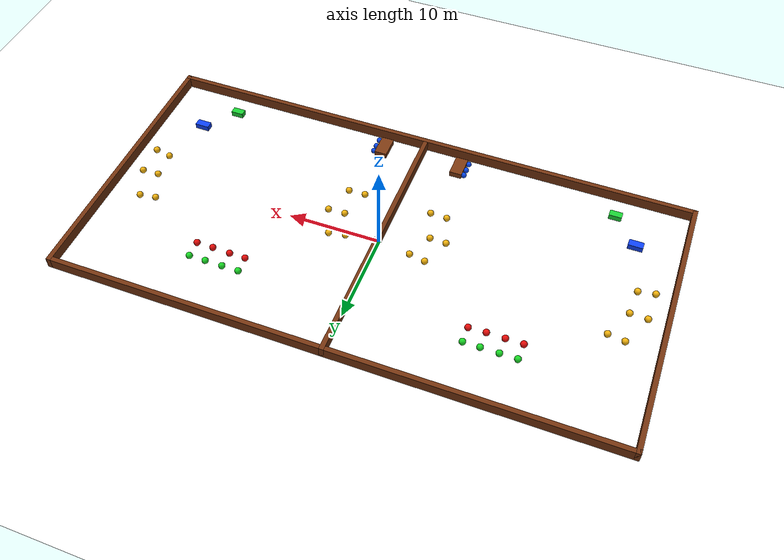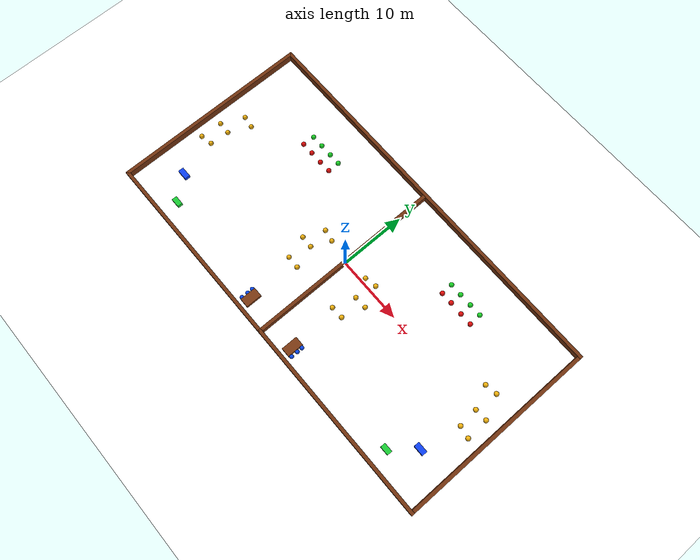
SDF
<?xml version="1.0" ?>
<sdf version="1.9">
  <world name="asv_field">
    <gravity>0 0 -9.81</gravity>

    <plugin filename="gz-sim-physics-system" name="gz::sim::systems::Physics"/>
    <plugin filename="gz-sim-user-commands-system" name="gz::sim::systems::UserCommands"/>
    <plugin filename="gz-sim-scene-broadcaster-system" name="gz::sim::systems::SceneBroadcaster"/>
    <plugin filename="gz-sim-sensors-system" name="gz::sim::systems::Sensors">
      <render_engine>ogre2</render_engine>
    </plugin>

    <scene>
      <ambient>0.8 0.8 0.8 1</ambient>
      <background>0.7 0.7 0.7 1</background>
    </scene>

    <!-- White ground plane: 60 m long x 30 m wide. -->
    <model name="ground_plane">
      <static>true</static>
      <link name="ground_link">
        <collision name="ground_collision">
          <geometry>
            <plane>
              <normal>0 0 1</normal>
              <size>60 30</size>
            </plane>
          </geometry>
        </collision>
        <visual name="ground_visual">
          <geometry>
            <plane>
              <normal>0 0 1</normal>
              <size>60 30</size>
            </plane>
          </geometry>
          <material>
            <diffuse>1 1 1 1</diffuse>
            <ambient>1 1 1 1</ambient>
            <specular>0 0 0 1</specular>
          </material>
        </visual>
      </link>
    </model>

    <!-- Brown perimeter walls for the two adjacent fields. The wall at x=0
         is shared by both fields and is defined only once. -->
    <model name="field_walls">
      <static>true</static>
      <link name="walls_link">
        <visual name="wall_top">
          <pose>0 14.75 0.60 0 0 0</pose>
          <geometry><box><size>60 0.50 1.20</size></box></geometry>
          <material><diffuse>0.45 0.20 0.06 1</diffuse><ambient>0.14 0.05 0.01 1</ambient></material>
        </visual>
        <collision name="wall_top_collision">
          <pose>0 14.75 0.60 0 0 0</pose>
          <geometry><box><size>60 0.50 1.20</size></box></geometry>
        </collision>

        <visual name="wall_bottom">
          <pose>0 -14.75 0.60 0 0 0</pose>
          <geometry><box><size>60 0.50 1.20</size></box></geometry>
          <material><diffuse>0.45 0.20 0.06 1</diffuse><ambient>0.14 0.05 0.01 1</ambient></material>
        </visual>
        <collision name="wall_bottom_collision">
          <pose>0 -14.75 0.60 0 0 0</pose>
          <geometry><box><size>60 0.50 1.20</size></box></geometry>
        </collision>

        <visual name="wall_left_outer">
          <pose>-29.75 0 0.60 0 0 0</pose>
          <geometry><box><size>0.50 30 1.20</size></box></geometry>
          <material><diffuse>0.45 0.20 0.06 1</diffuse><ambient>0.14 0.05 0.01 1</ambient></material>
        </visual>
        <collision name="wall_left_outer_collision">
          <pose>-29.75 0 0.60 0 0 0</pose>
          <geometry><box><size>0.50 30 1.20</size></box></geometry>
        </collision>

        <!-- One shared divider; do not duplicate it for the two fields. -->
        <visual name="wall_center_shared">
          <pose>0 0 0.60 0 0 0</pose>
          <geometry><box><size>0.50 30 1.20</size></box></geometry>
          <material><diffuse>0.45 0.20 0.06 1</diffuse><ambient>0.14 0.05 0.01 1</ambient></material>
        </visual>
        <collision name="wall_center_shared_collision">
          <pose>0 0 0.60 0 0 0</pose>
          <geometry><box><size>0.50 30 1.20</size></box></geometry>
        </collision>

        <visual name="wall_right_outer">
          <pose>29.75 0 0.60 0 0 0</pose>
          <geometry><box><size>0.50 30 1.20</size></box></geometry>
          <material><diffuse>0.45 0.20 0.06 1</diffuse><ambient>0.14 0.05 0.01 1</ambient></material>
        </visual>
        <collision name="wall_right_outer_collision">
          <pose>29.75 0 0.60 0 0 0</pose>
          <geometry><box><size>0.50 30 1.20</size></box></geometry>
        </collision>
      </link>
    </model>

    <model name="field_boxes">
      <static>true</static>
      <link name="boxes_link">
        <!-- Horizontal blue box, left lane. -->
        <visual name="box_blue_left_outer">
          <pose>-24.85 -8.78 0.31 0 0 0</pose>
          <geometry><box><size>1.55 0.80 0.60</size></box></geometry>
          <material><diffuse>0.05 0.25 0.95 1</diffuse><ambient>0.02 0.08 0.30 1</ambient></material>
        </visual>
        <collision name="box_blue_left_outer_collision">
          <pose>-24.85 -8.78 0.31 0 0 0</pose>
          <geometry><box><size>1.55 0.80 0.60</size></box></geometry>
        </collision>

        <!-- Horizontal green box, left lane. -->
        <visual name="box_green_left_inner">
          <pose>-22.05 -12.08 0.31 0 0 0</pose>
          <geometry><box><size>1.35 0.75 0.60</size></box></geometry>
          <material><diffuse>0.10 0.80 0.20 1</diffuse><ambient>0.03 0.25 0.05 1</ambient></material>
        </visual>
        <collision name="box_green_left_inner_collision">
          <pose>-22.05 -12.08 0.31 0 0 0</pose>
          <geometry><box><size>1.35 0.75 0.60</size></box></geometry>
        </collision>

        <!-- Brown box at the inner end of the left lane. -->
        <visual name="box_brown_left_inner_end">
          <pose>-4.47 -12.82 0.31 0 0 0</pose>
          <geometry><box><size>1.35 2.40 0.60</size></box></geometry>
          <material><diffuse>0.48 0.22 0.07 1</diffuse><ambient>0.15 0.06 0.02 1</ambient></material>
        </visual>
        <collision name="box_brown_left_inner_end_collision">
          <pose>-4.47 -12.82 0.31 0 0 0</pose>
          <geometry><box><size>1.35 2.40 0.60</size></box></geometry>
        </collision>

        <!-- Mirrored boxes for the right lane. -->
        <visual name="box_blue_right_outer">
          <pose>24.85 -8.78 0.31 0 0 0</pose>
          <geometry><box><size>1.55 0.80 0.60</size></box></geometry>
          <material><diffuse>0.05 0.25 0.95 1</diffuse><ambient>0.02 0.08 0.30 1</ambient></material>
        </visual>
        <collision name="box_blue_right_outer_collision">
          <pose>24.85 -8.78 0.31 0 0 0</pose>
          <geometry><box><size>1.55 0.80 0.60</size></box></geometry>
        </collision>

        <visual name="box_green_right_inner">
          <pose>22.05 -12.08 0.31 0 0 0</pose>
          <geometry><box><size>1.35 0.75 0.60</size></box></geometry>
          <material><diffuse>0.10 0.80 0.20 1</diffuse><ambient>0.03 0.25 0.05 1</ambient></material>
        </visual>
        <collision name="box_green_right_inner_collision">
          <pose>22.05 -12.08 0.31 0 0 0</pose>
          <geometry><box><size>1.35 0.75 0.60</size></box></geometry>
        </collision>

        <visual name="box_brown_right_inner_end">
          <pose>4.29 -12.82 0.31 0 0 0</pose>
          <geometry><box><size>1.35 2.40 0.60</size></box></geometry>
          <material><diffuse>0.48 0.22 0.07 1</diffuse><ambient>0.15 0.06 0.02 1</ambient></material>
        </visual>
        <collision name="box_brown_right_inner_end_collision">
          <pose>4.29 -12.82 0.31 0 0 0</pose>
          <geometry><box><size>1.35 2.40 0.60</size></box></geometry>
        </collision>
      </link>
    </model>

    <model name="field_balls">
      <static>true</static>
      <link name="balls_link">
        <!-- Green row at the top of each lane. -->
        <visual name="ball_green_left_1"><pose>-17.35 8.87 0.36 0 0 0</pose><geometry><sphere><radius>0.35</radius></sphere></geometry><material><diffuse>0.10 0.85 0.15 1</diffuse><ambient>0.03 0.28 0.04 1</ambient></material></visual>
        <collision name="ball_green_left_1_collision"><pose>-17.35 8.87 0.36 0 0 0</pose><geometry><sphere><radius>0.35</radius></sphere></geometry></collision>
        <visual name="ball_green_left_2"><pose>-15.54 8.87 0.36 0 0 0</pose><geometry><sphere><radius>0.35</radius></sphere></geometry><material><diffuse>0.10 0.85 0.15 1</diffuse><ambient>0.03 0.28 0.04 1</ambient></material></visual>
        <collision name="ball_green_left_2_collision"><pose>-15.54 8.87 0.36 0 0 0</pose><geometry><sphere><radius>0.35</radius></sphere></geometry></collision>
        <visual name="ball_green_left_3"><pose>-13.66 8.87 0.36 0 0 0</pose><geometry><sphere><radius>0.35</radius></sphere></geometry><material><diffuse>0.10 0.85 0.15 1</diffuse><ambient>0.03 0.28 0.04 1</ambient></material></visual>
        <collision name="ball_green_left_3_collision"><pose>-13.66 8.87 0.36 0 0 0</pose><geometry><sphere><radius>0.35</radius></sphere></geometry></collision>
        <visual name="ball_green_left_4"><pose>-11.91 8.87 0.36 0 0 0</pose><geometry><sphere><radius>0.35</radius></sphere></geometry><material><diffuse>0.10 0.85 0.15 1</diffuse><ambient>0.03 0.28 0.04 1</ambient></material></visual>
        <collision name="ball_green_left_4_collision"><pose>-11.91 8.87 0.36 0 0 0</pose><geometry><sphere><radius>0.35</radius></sphere></geometry></collision>
        <visual name="ball_green_right_1"><pose>11.71 8.87 0.36 0 0 0</pose><geometry><sphere><radius>0.35</radius></sphere></geometry><material><diffuse>0.10 0.85 0.15 1</diffuse><ambient>0.03 0.28 0.04 1</ambient></material></visual>
        <collision name="ball_green_right_1_collision"><pose>11.71 8.87 0.36 0 0 0</pose><geometry><sphere><radius>0.35</radius></sphere></geometry></collision>
        <visual name="ball_green_right_2"><pose>13.52 8.87 0.36 0 0 0</pose><geometry><sphere><radius>0.35</radius></sphere></geometry><material><diffuse>0.10 0.85 0.15 1</diffuse><ambient>0.03 0.28 0.04 1</ambient></material></visual>
        <collision name="ball_green_right_2_collision"><pose>13.52 8.87 0.36 0 0 0</pose><geometry><sphere><radius>0.35</radius></sphere></geometry></collision>
        <visual name="ball_green_right_3"><pose>15.40 8.87 0.36 0 0 0</pose><geometry><sphere><radius>0.35</radius></sphere></geometry><material><diffuse>0.10 0.85 0.15 1</diffuse><ambient>0.03 0.28 0.04 1</ambient></material></visual>
        <collision name="ball_green_right_3_collision"><pose>15.40 8.87 0.36 0 0 0</pose><geometry><sphere><radius>0.35</radius></sphere></geometry></collision>
        <visual name="ball_green_right_4"><pose>17.21 8.87 0.36 0 0 0</pose><geometry><sphere><radius>0.35</radius></sphere></geometry><material><diffuse>0.10 0.85 0.15 1</diffuse><ambient>0.03 0.28 0.04 1</ambient></material></visual>
        <collision name="ball_green_right_4_collision"><pose>17.21 8.87 0.36 0 0 0</pose><geometry><sphere><radius>0.35</radius></sphere></geometry></collision>

        <!-- Red row directly below the green row. -->
        <visual name="ball_red_left_1"><pose>-17.42 7.06 0.36 0 0 0</pose><geometry><sphere><radius>0.35</radius></sphere></geometry><material><diffuse>0.90 0.05 0.04 1</diffuse><ambient>0.28 0.02 0.01 1</ambient></material></visual>
        <collision name="ball_red_left_1_collision"><pose>-17.42 7.06 0.36 0 0 0</pose><geometry><sphere><radius>0.35</radius></sphere></geometry></collision>
        <visual name="ball_red_left_2"><pose>-15.60 7.06 0.36 0 0 0</pose><geometry><sphere><radius>0.35</radius></sphere></geometry><material><diffuse>0.90 0.05 0.04 1</diffuse><ambient>0.28 0.02 0.01 1</ambient></material></visual>
        <collision name="ball_red_left_2_collision"><pose>-15.60 7.06 0.36 0 0 0</pose><geometry><sphere><radius>0.35</radius></sphere></geometry></collision>
        <visual name="ball_red_left_3"><pose>-13.72 7.06 0.36 0 0 0</pose><geometry><sphere><radius>0.35</radius></sphere></geometry><material><diffuse>0.90 0.05 0.04 1</diffuse><ambient>0.28 0.02 0.01 1</ambient></material></visual>
        <collision name="ball_red_left_3_collision"><pose>-13.72 7.06 0.36 0 0 0</pose><geometry><sphere><radius>0.35</radius></sphere></geometry></collision>
        <visual name="ball_red_left_4"><pose>-11.91 7.13 0.36 0 0 0</pose><geometry><sphere><radius>0.35</radius></sphere></geometry><material><diffuse>0.90 0.05 0.04 1</diffuse><ambient>0.28 0.02 0.01 1</ambient></material></visual>
        <collision name="ball_red_left_4_collision"><pose>-11.91 7.13 0.36 0 0 0</pose><geometry><sphere><radius>0.35</radius></sphere></geometry></collision>
        <visual name="ball_red_right_1"><pose>11.78 7.13 0.36 0 0 0</pose><geometry><sphere><radius>0.35</radius></sphere></geometry><material><diffuse>0.90 0.05 0.04 1</diffuse><ambient>0.28 0.02 0.01 1</ambient></material></visual>
        <collision name="ball_red_right_1_collision"><pose>11.78 7.13 0.36 0 0 0</pose><geometry><sphere><radius>0.35</radius></sphere></geometry></collision>
        <visual name="ball_red_right_2"><pose>13.52 7.13 0.36 0 0 0</pose><geometry><sphere><radius>0.35</radius></sphere></geometry><material><diffuse>0.90 0.05 0.04 1</diffuse><ambient>0.28 0.02 0.01 1</ambient></material></visual>
        <collision name="ball_red_right_2_collision"><pose>13.52 7.13 0.36 0 0 0</pose><geometry><sphere><radius>0.35</radius></sphere></geometry></collision>
        <visual name="ball_red_right_3"><pose>15.47 7.06 0.36 0 0 0</pose><geometry><sphere><radius>0.35</radius></sphere></geometry><material><diffuse>0.90 0.05 0.04 1</diffuse><ambient>0.28 0.02 0.01 1</ambient></material></visual>
        <collision name="ball_red_right_3_collision"><pose>15.47 7.06 0.36 0 0 0</pose><geometry><sphere><radius>0.35</radius></sphere></geometry></collision>
        <visual name="ball_red_right_4"><pose>17.28 7.06 0.36 0 0 0</pose><geometry><sphere><radius>0.35</radius></sphere></geometry><material><diffuse>0.90 0.05 0.04 1</diffuse><ambient>0.28 0.02 0.01 1</ambient></material></visual>
        <collision name="ball_red_right_4_collision"><pose>17.28 7.06 0.36 0 0 0</pose><geometry><sphere><radius>0.35</radius></sphere></geometry></collision>

        <!-- Side markers on the outside of each lane. -->
        <visual name="ball_outer_left_1"><pose>-26.28 3.31 0.36 0 0 0</pose><geometry><sphere><radius>0.35</radius></sphere></geometry><material><diffuse>0.95 0.70 0.05 1</diffuse><ambient>0.30 0.18 0.01 1</ambient></material></visual>
        <collision name="ball_outer_left_1_collision"><pose>-26.28 3.31 0.36 0 0 0</pose><geometry><sphere><radius>0.35</radius></sphere></geometry></collision>
        <visual name="ball_outer_left_2"><pose>-24.53 3.05 0.36 0 0 0</pose><geometry><sphere><radius>0.35</radius></sphere></geometry><material><diffuse>0.95 0.70 0.05 1</diffuse><ambient>0.30 0.18 0.01 1</ambient></material></visual>
        <collision name="ball_outer_left_2_collision"><pose>-24.53 3.05 0.36 0 0 0</pose><geometry><sphere><radius>0.35</radius></sphere></geometry></collision>
        <visual name="ball_outer_left_3"><pose>-27.82 -0.03 0.36 0 0 0</pose><geometry><sphere><radius>0.35</radius></sphere></geometry><material><diffuse>0.95 0.70 0.05 1</diffuse><ambient>0.30 0.18 0.01 1</ambient></material></visual>
        <collision name="ball_outer_left_3_collision"><pose>-27.82 -0.03 0.36 0 0 0</pose><geometry><sphere><radius>0.35</radius></sphere></geometry></collision>
        <visual name="ball_outer_left_4"><pose>-26.01 -0.10 0.36 0 0 0</pose><geometry><sphere><radius>0.35</radius></sphere></geometry><material><diffuse>0.95 0.70 0.05 1</diffuse><ambient>0.30 0.18 0.01 1</ambient></material></visual>
        <collision name="ball_outer_left_4_collision"><pose>-26.01 -0.10 0.36 0 0 0</pose><geometry><sphere><radius>0.35</radius></sphere></geometry></collision>
        <visual name="ball_outer_left_5"><pose>-27.95 -3.31 0.36 0 0 0</pose><geometry><sphere><radius>0.35</radius></sphere></geometry><material><diffuse>0.95 0.70 0.05 1</diffuse><ambient>0.30 0.18 0.01 1</ambient></material></visual>
        <collision name="ball_outer_left_5_collision"><pose>-27.95 -3.31 0.36 0 0 0</pose><geometry><sphere><radius>0.35</radius></sphere></geometry></collision>
        <visual name="ball_outer_left_6"><pose>-26.21 -2.98 0.36 0 0 0</pose><geometry><sphere><radius>0.35</radius></sphere></geometry><material><diffuse>0.95 0.70 0.05 1</diffuse><ambient>0.30 0.18 0.01 1</ambient></material></visual>
        <collision name="ball_outer_left_6_collision"><pose>-26.21 -2.98 0.36 0 0 0</pose><geometry><sphere><radius>0.35</radius></sphere></geometry></collision>
        <visual name="ball_outer_right_1"><pose>26.14 3.31 0.36 0 0 0</pose><geometry><sphere><radius>0.35</radius></sphere></geometry><material><diffuse>0.95 0.70 0.05 1</diffuse><ambient>0.30 0.18 0.01 1</ambient></material></visual>
        <collision name="ball_outer_right_1_collision"><pose>26.14 3.31 0.36 0 0 0</pose><geometry><sphere><radius>0.35</radius></sphere></geometry></collision>
        <visual name="ball_outer_right_2"><pose>24.40 3.05 0.36 0 0 0</pose><geometry><sphere><radius>0.35</radius></sphere></geometry><material><diffuse>0.95 0.70 0.05 1</diffuse><ambient>0.30 0.18 0.01 1</ambient></material></visual>
        <collision name="ball_outer_right_2_collision"><pose>24.40 3.05 0.36 0 0 0</pose><geometry><sphere><radius>0.35</radius></sphere></geometry></collision>
        <visual name="ball_outer_right_3"><pose>27.68 -0.03 0.36 0 0 0</pose><geometry><sphere><radius>0.35</radius></sphere></geometry><material><diffuse>0.95 0.70 0.05 1</diffuse><ambient>0.30 0.18 0.01 1</ambient></material></visual>
        <collision name="ball_outer_right_3_collision"><pose>27.68 -0.03 0.36 0 0 0</pose><geometry><sphere><radius>0.35</radius></sphere></geometry></collision>
        <visual name="ball_outer_right_4"><pose>25.87 -0.10 0.36 0 0 0</pose><geometry><sphere><radius>0.35</radius></sphere></geometry><material><diffuse>0.95 0.70 0.05 1</diffuse><ambient>0.30 0.18 0.01 1</ambient></material></visual>
        <collision name="ball_outer_right_4_collision"><pose>25.87 -0.10 0.36 0 0 0</pose><geometry><sphere><radius>0.35</radius></sphere></geometry></collision>
        <visual name="ball_outer_right_5"><pose>27.82 -3.31 0.36 0 0 0</pose><geometry><sphere><radius>0.35</radius></sphere></geometry><material><diffuse>0.95 0.70 0.05 1</diffuse><ambient>0.30 0.18 0.01 1</ambient></material></visual>
        <collision name="ball_outer_right_5_collision"><pose>27.82 -3.31 0.36 0 0 0</pose><geometry><sphere><radius>0.35</radius></sphere></geometry></collision>
        <visual name="ball_outer_right_6"><pose>26.07 -2.98 0.36 0 0 0</pose><geometry><sphere><radius>0.35</radius></sphere></geometry><material><diffuse>0.95 0.70 0.05 1</diffuse><ambient>0.30 0.18 0.01 1</ambient></material></visual>
        <collision name="ball_outer_right_6_collision"><pose>26.07 -2.98 0.36 0 0 0</pose><geometry><sphere><radius>0.35</radius></sphere></geometry></collision>

        <!-- Side markers on the inside of each lane. -->
        <visual name="ball_inner_left_1"><pose>-5.34 0.97 0.36 0 0 0</pose><geometry><sphere><radius>0.35</radius></sphere></geometry><material><diffuse>0.95 0.70 0.05 1</diffuse><ambient>0.30 0.18 0.01 1</ambient></material></visual>
        <collision name="ball_inner_left_1_collision"><pose>-5.34 0.97 0.36 0 0 0</pose><geometry><sphere><radius>0.35</radius></sphere></geometry></collision>
        <visual name="ball_inner_left_2"><pose>-3.59 0.64 0.36 0 0 0</pose><geometry><sphere><radius>0.35</radius></sphere></geometry><material><diffuse>0.95 0.70 0.05 1</diffuse><ambient>0.30 0.18 0.01 1</ambient></material></visual>
        <collision name="ball_inner_left_2_collision"><pose>-3.59 0.64 0.36 0 0 0</pose><geometry><sphere><radius>0.35</radius></sphere></geometry></collision>
        <visual name="ball_inner_left_3"><pose>-6.61 -2.04 0.36 0 0 0</pose><geometry><sphere><radius>0.35</radius></sphere></geometry><material><diffuse>0.95 0.70 0.05 1</diffuse><ambient>0.30 0.18 0.01 1</ambient></material></visual>
        <collision name="ball_inner_left_3_collision"><pose>-6.61 -2.04 0.36 0 0 0</pose><geometry><sphere><radius>0.35</radius></sphere></geometry></collision>
        <visual name="ball_inner_left_4"><pose>-4.85 -2.11 0.36 0 0 0</pose><geometry><sphere><radius>0.35</radius></sphere></geometry><material><diffuse>0.95 0.70 0.05 1</diffuse><ambient>0.30 0.18 0.01 1</ambient></material></visual>
        <collision name="ball_inner_left_4_collision"><pose>-4.85 -2.11 0.36 0 0 0</pose><geometry><sphere><radius>0.35</radius></sphere></geometry></collision>
        <visual name="ball_inner_left_5"><pose>-5.60 -5.32 0.36 0 0 0</pose><geometry><sphere><radius>0.35</radius></sphere></geometry><material><diffuse>0.95 0.70 0.05 1</diffuse><ambient>0.30 0.18 0.01 1</ambient></material></visual>
        <collision name="ball_inner_left_5_collision"><pose>-5.60 -5.32 0.36 0 0 0</pose><geometry><sphere><radius>0.35</radius></sphere></geometry></collision>
        <visual name="ball_inner_left_6"><pose>-3.79 -5.39 0.36 0 0 0</pose><geometry><sphere><radius>0.35</radius></sphere></geometry><material><diffuse>0.95 0.70 0.05 1</diffuse><ambient>0.30 0.18 0.01 1</ambient></material></visual>
        <collision name="ball_inner_left_6_collision"><pose>-3.79 -5.39 0.36 0 0 0</pose><geometry><sphere><radius>0.35</radius></sphere></geometry></collision>
        <visual name="ball_inner_right_1"><pose>5.20 0.97 0.36 0 0 0</pose><geometry><sphere><radius>0.35</radius></sphere></geometry><material><diffuse>0.95 0.70 0.05 1</diffuse><ambient>0.30 0.18 0.01 1</ambient></material></visual>
        <collision name="ball_inner_right_1_collision"><pose>5.20 0.97 0.36 0 0 0</pose><geometry><sphere><radius>0.35</radius></sphere></geometry></collision>
        <visual name="ball_inner_right_2"><pose>3.46 0.64 0.36 0 0 0</pose><geometry><sphere><radius>0.35</radius></sphere></geometry><material><diffuse>0.95 0.70 0.05 1</diffuse><ambient>0.30 0.18 0.01 1</ambient></material></visual>
        <collision name="ball_inner_right_2_collision"><pose>3.46 0.64 0.36 0 0 0</pose><geometry><sphere><radius>0.35</radius></sphere></geometry></collision>
        <visual name="ball_inner_right_3"><pose>6.48 -2.04 0.36 0 0 0</pose><geometry><sphere><radius>0.35</radius></sphere></geometry><material><diffuse>0.95 0.70 0.05 1</diffuse><ambient>0.30 0.18 0.01 1</ambient></material></visual>
        <collision name="ball_inner_right_3_collision"><pose>6.48 -2.04 0.36 0 0 0</pose><geometry><sphere><radius>0.35</radius></sphere></geometry></collision>
        <visual name="ball_inner_right_4"><pose>4.66 -2.11 0.36 0 0 0</pose><geometry><sphere><radius>0.35</radius></sphere></geometry><material><diffuse>0.95 0.70 0.05 1</diffuse><ambient>0.30 0.18 0.01 1</ambient></material></visual>
        <collision name="ball_inner_right_4_collision"><pose>4.66 -2.11 0.36 0 0 0</pose><geometry><sphere><radius>0.35</radius></sphere></geometry></collision>
        <visual name="ball_inner_right_5"><pose>5.47 -5.32 0.36 0 0 0</pose><geometry><sphere><radius>0.35</radius></sphere></geometry><material><diffuse>0.95 0.70 0.05 1</diffuse><ambient>0.30 0.18 0.01 1</ambient></material></visual>
        <collision name="ball_inner_right_5_collision"><pose>5.47 -5.32 0.36 0 0 0</pose><geometry><sphere><radius>0.35</radius></sphere></geometry></collision>
        <visual name="ball_inner_right_6"><pose>3.66 -5.39 0.36 0 0 0</pose><geometry><sphere><radius>0.35</radius></sphere></geometry><material><diffuse>0.95 0.70 0.05 1</diffuse><ambient>0.30 0.18 0.01 1</ambient></material></visual>
        <collision name="ball_inner_right_6_collision"><pose>3.66 -5.39 0.36 0 0 0</pose><geometry><sphere><radius>0.35</radius></sphere></geometry></collision>

        <!-- Three small blue balls beside each brown inner-end box. -->
        <visual name="ball_blue_left_box_1"><pose>-5.34 -11.95 0.31 0 0 0</pose><geometry><sphere><radius>0.30</radius></sphere></geometry><material><diffuse>0.03 0.28 0.95 1</diffuse><ambient>0.01 0.08 0.30 1</ambient></material></visual>
        <collision name="ball_blue_left_box_1_collision"><pose>-5.34 -11.95 0.31 0 0 0</pose><geometry><sphere><radius>0.30</radius></sphere></geometry></collision>
        <visual name="ball_blue_left_box_2"><pose>-5.34 -12.75 0.31 0 0 0</pose><geometry><sphere><radius>0.30</radius></sphere></geometry><material><diffuse>0.03 0.28 0.95 1</diffuse><ambient>0.01 0.08 0.30 1</ambient></material></visual>
        <collision name="ball_blue_left_box_2_collision"><pose>-5.34 -12.75 0.31 0 0 0</pose><geometry><sphere><radius>0.30</radius></sphere></geometry></collision>
        <visual name="ball_blue_left_box_3"><pose>-5.34 -13.70 0.31 0 0 0</pose><geometry><sphere><radius>0.30</radius></sphere></geometry><material><diffuse>0.03 0.28 0.95 1</diffuse><ambient>0.01 0.08 0.30 1</ambient></material></visual>
        <collision name="ball_blue_left_box_3_collision"><pose>-5.34 -13.70 0.31 0 0 0</pose><geometry><sphere><radius>0.30</radius></sphere></geometry></collision>
        <visual name="ball_blue_right_box_1"><pose>5.20 -11.95 0.31 0 0 0</pose><geometry><sphere><radius>0.30</radius></sphere></geometry><material><diffuse>0.03 0.28 0.95 1</diffuse><ambient>0.01 0.08 0.30 1</ambient></material></visual>
        <collision name="ball_blue_right_box_1_collision"><pose>5.20 -11.95 0.31 0 0 0</pose><geometry><sphere><radius>0.30</radius></sphere></geometry></collision>
        <visual name="ball_blue_right_box_2"><pose>5.20 -12.75 0.31 0 0 0</pose><geometry><sphere><radius>0.30</radius></sphere></geometry><material><diffuse>0.03 0.28 0.95 1</diffuse><ambient>0.01 0.08 0.30 1</ambient></material></visual>
        <collision name="ball_blue_right_box_2_collision"><pose>5.20 -12.75 0.31 0 0 0</pose><geometry><sphere><radius>0.30</radius></sphere></geometry></collision>
        <visual name="ball_blue_right_box_3"><pose>5.20 -13.70 0.31 0 0 0</pose><geometry><sphere><radius>0.30</radius></sphere></geometry><material><diffuse>0.03 0.28 0.95 1</diffuse><ambient>0.01 0.08 0.30 1</ambient></material></visual>
        <collision name="ball_blue_right_box_3_collision"><pose>5.20 -13.70 0.31 0 0 0</pose><geometry><sphere><radius>0.30</radius></sphere></geometry></collision>
      </link>
    </model>

    <light name="sun" type="directional">
      <cast_shadows>true</cast_shadows>
      <pose>0 0 50 0 0 0</pose>
      <diffuse>0.8 0.8 0.8 1</diffuse>
      <specular>0.2 0.2 0.2 1</specular>
      <direction>-0.3 0.2 -1</direction>
    </light>
  </world>
</sdf>
